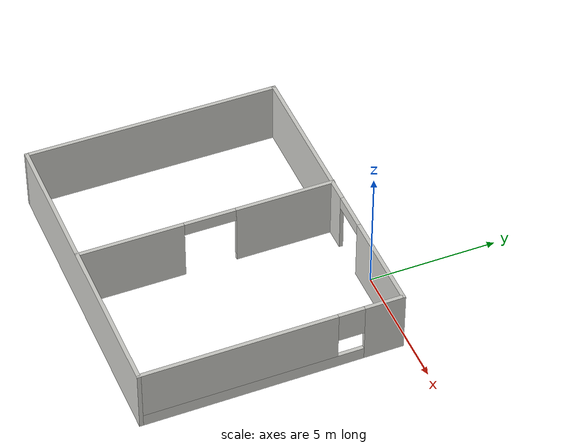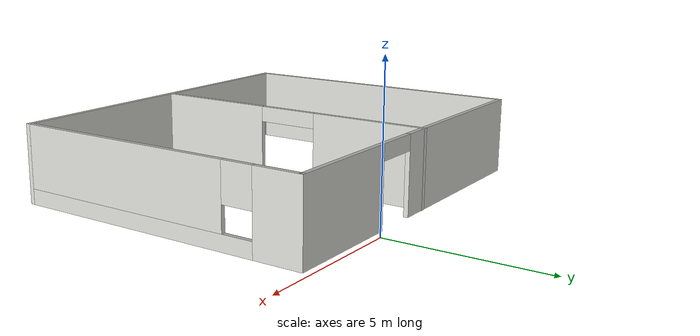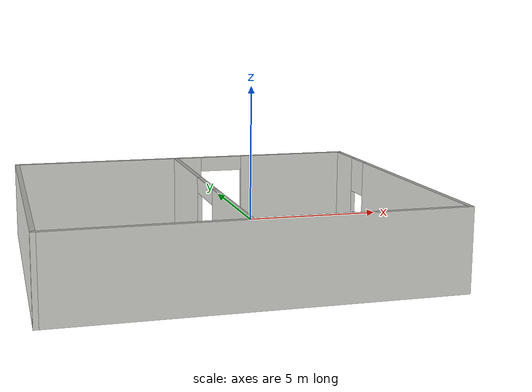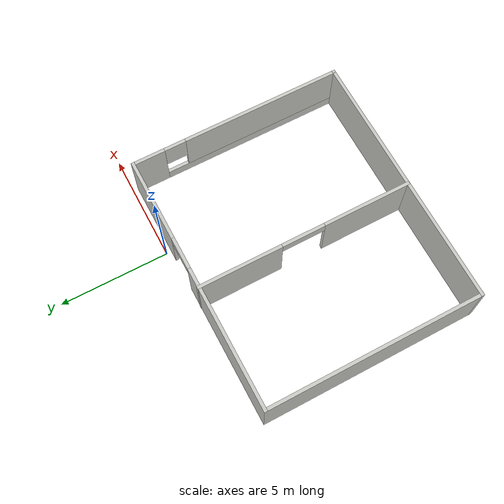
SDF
<?xml version='1.0'?>
<sdf version='1.6'>
  <model name='Untitled'>
    <pose frame=''>-2.56852 -5.2172 0 0 -0 0</pose>
    <link name='Wall_2'>
      <pose frame=''>0 4.91712 0 0 -0 0</pose>
      <visual name='Wall_2_Visual_0'>
        <pose frame=''>-2.71113 0 1.25 0 -0 0</pose>
        <geometry>
          <box>
            <size>6.57774 0.15 2.5</size>
          </box>
        </geometry>
        <material>
          <script>
            <uri>file://media/materials/scripts/gazebo.material</uri>
            <name>Gazebo/CeilingTiled</name>
          </script>
          <ambient>0.435294 0.796078 0.67451 1</ambient>
        </material>
        <meta>
          <layer>0</layer>
        </meta>
      </visual>
      <collision name='Wall_2_Collision_0'>
        <geometry>
          <box>
            <size>6.57774 0.15 2.5</size>
          </box>
        </geometry>
        <pose frame=''>-2.71113 0 1.25 0 -0 0</pose>
      </collision>
      <visual name='Wall_2_Visual_1'>
        <pose frame=''>4.03887 0 1.25 0 -0 0</pose>
        <geometry>
          <box>
            <size>3.92226 0.15 2.5</size>
          </box>
        </geometry>
        <material>
          <script>
            <uri>file://media/materials/scripts/gazebo.material</uri>
            <name>Gazebo/CeilingTiled</name>
          </script>
          <ambient>0.435294 0.796078 0.67451 1</ambient>
        </material>
        <meta>
          <layer>0</layer>
        </meta>
      </visual>
      <collision name='Wall_2_Collision_1'>
        <geometry>
          <box>
            <size>3.92226 0.15 2.5</size>
          </box>
        </geometry>
        <pose frame=''>4.03887 0 1.25 0 -0 0</pose>
      </collision>
      <visual name='Wall_2_Visual_2'>
        <pose frame=''>1.32774 0 2.25 0 -0 0</pose>
        <geometry>
          <box>
            <size>1.5 0.15 0.5</size>
          </box>
        </geometry>
        <material>
          <script>
            <uri>file://media/materials/scripts/gazebo.material</uri>
            <name>Gazebo/CeilingTiled</name>
          </script>
          <ambient>0.435294 0.796078 0.67451 1</ambient>
        </material>
        <meta>
          <layer>0</layer>
        </meta>
      </visual>
      <collision name='Wall_2_Collision_2'>
        <geometry>
          <box>
            <size>1.5 0.15 0.5</size>
          </box>
        </geometry>
        <pose frame=''>1.32774 0 2.25 0 -0 0</pose>
      </collision>
    </link>
    <link name='Wall_3'>
      <pose frame=''>5.925 -0.007883 0 0 0 -1.5708</pose>
      <visual name='Wall_3_Visual_0'>
        <pose frame=''>-4.22922 0 1.25 0 -0 0</pose>
        <geometry>
          <box>
            <size>1.54156 0.15 2.5</size>
          </box>
        </geometry>
        <material>
          <script>
            <uri>file://media/materials/scripts/gazebo.material</uri>
            <name>Gazebo/CeilingTiled</name>
          </script>
          <ambient>0.435294 0.796078 0.67451 1</ambient>
        </material>
        <meta>
          <layer>0</layer>
        </meta>
      </visual>
      <collision name='Wall_3_Collision_0'>
        <geometry>
          <box>
            <size>1.54156 0.15 2.5</size>
          </box>
        </geometry>
        <pose frame=''>-4.22922 0 1.25 0 -0 0</pose>
      </collision>
      <visual name='Wall_3_Visual_1'>
        <pose frame=''>0.770779 0 0.25 0 -0 0</pose>
        <geometry>
          <box>
            <size>8.45844 0.15 0.5</size>
          </box>
        </geometry>
        <material>
          <script>
            <uri>file://media/materials/scripts/gazebo.material</uri>
            <name>Gazebo/CeilingTiled</name>
          </script>
          <ambient>0.435294 0.796078 0.67451 1</ambient>
        </material>
        <meta>
          <layer>0</layer>
        </meta>
      </visual>
      <collision name='Wall_3_Collision_1'>
        <geometry>
          <box>
            <size>8.45844 0.15 0.5</size>
          </box>
        </geometry>
        <pose frame=''>0.770779 0 0.25 0 -0 0</pose>
      </collision>
      <visual name='Wall_3_Visual_2'>
        <pose frame=''>1.27078 0 1.5 0 -0 0</pose>
        <geometry>
          <box>
            <size>7.45844 0.15 2</size>
          </box>
        </geometry>
        <material>
          <script>
            <uri>file://media/materials/scripts/gazebo.material</uri>
            <name>Gazebo/CeilingTiled</name>
          </script>
          <ambient>0.435294 0.796078 0.67451 1</ambient>
        </material>
        <meta>
          <layer>0</layer>
        </meta>
      </visual>
      <collision name='Wall_3_Collision_2'>
        <geometry>
          <box>
            <size>7.45844 0.15 2</size>
          </box>
        </geometry>
        <pose frame=''>1.27078 0 1.5 0 -0 0</pose>
      </collision>
      <visual name='Wall_3_Visual_3'>
        <pose frame=''>-2.95844 0 1.9 0 -0 0</pose>
        <geometry>
          <box>
            <size>1 0.15 1.2</size>
          </box>
        </geometry>
        <material>
          <script>
            <uri>file://media/materials/scripts/gazebo.material</uri>
            <name>Gazebo/CeilingTiled</name>
          </script>
          <ambient>0.435294 0.796078 0.67451 1</ambient>
        </material>
        <meta>
          <layer>0</layer>
        </meta>
      </visual>
      <collision name='Wall_3_Collision_3'>
        <geometry>
          <box>
            <size>1 0.15 1.2</size>
          </box>
        </geometry>
        <pose frame=''>-2.95844 0 1.9 0 -0 0</pose>
      </collision>
    </link>
    <link name='Wall_6'>
      <collision name='Wall_6_Collision'>
        <geometry>
          <box>
            <size>12 0.15 2.5</size>
          </box>
        </geometry>
        <pose frame=''>0 0 1.25 0 -0 0</pose>
      </collision>
      <visual name='Wall_6_Visual'>
        <pose frame=''>0 0 1.25 0 -0 0</pose>
        <geometry>
          <box>
            <size>12 0.15 2.5</size>
          </box>
        </geometry>
        <material>
          <script>
            <uri>file://media/materials/scripts/gazebo.material</uri>
            <name>Gazebo/CeilingTiled</name>
          </script>
          <ambient>1 1 1 1</ambient>
        </material>
        <meta>
          <layer>0</layer>
        </meta>
      </visual>
      <pose frame=''>0 -4.93288 0 0 -0 3.14159</pose>
    </link>
    <link name='Wall_7'>
      <collision name='Wall_7_Collision'>
        <geometry>
          <box>
            <size>10 0.15 2.5</size>
          </box>
        </geometry>
        <pose frame=''>0 0 1.25 0 -0 0</pose>
      </collision>
      <visual name='Wall_7_Visual'>
        <pose frame=''>0 0 1.25 0 -0 0</pose>
        <geometry>
          <box>
            <size>10 0.15 2.5</size>
          </box>
        </geometry>
        <material>
          <script>
            <uri>file://media/materials/scripts/gazebo.material</uri>
            <name>Gazebo/CeilingTiled</name>
          </script>
          <ambient>0.435294 0.796078 0.67451 1</ambient>
        </material>
        <meta>
          <layer>0</layer>
        </meta>
      </visual>
      <pose frame=''>-5.925 -0.007883 0 0 -0 1.5708</pose>
    </link>
    <link name='Wall_9'>
      <pose frame=''>-0.330936 0.007883 0 0 0 -1.5708</pose>
      <visual name='Wall_9_Visual_0'>
        <pose frame=''>-3.05539 0 1.25 0 -0 0</pose>
        <geometry>
          <box>
            <size>3.88921 0.15 2.5</size>
          </box>
        </geometry>
        <material>
          <script>
            <uri>file://media/materials/scripts/gazebo.material</uri>
            <name>Gazebo/CeilingTiled</name>
          </script>
          <ambient>0.435294 0.796078 0.67451 1</ambient>
        </material>
        <meta>
          <layer>0</layer>
        </meta>
      </visual>
      <collision name='Wall_9_Collision_0'>
        <geometry>
          <box>
            <size>3.88921 0.15 2.5</size>
          </box>
        </geometry>
        <pose frame=''>-3.05539 0 1.25 0 -0 0</pose>
      </collision>
      <visual name='Wall_9_Visual_1'>
        <pose frame=''>2.94461 0 1.25 0 -0 0</pose>
        <geometry>
          <box>
            <size>4.11079 0.15 2.5</size>
          </box>
        </geometry>
        <material>
          <script>
            <uri>file://media/materials/scripts/gazebo.material</uri>
            <name>Gazebo/CeilingTiled</name>
          </script>
          <ambient>0.435294 0.796078 0.67451 1</ambient>
        </material>
        <meta>
          <layer>0</layer>
        </meta>
      </visual>
      <collision name='Wall_9_Collision_1'>
        <geometry>
          <box>
            <size>4.11079 0.15 2.5</size>
          </box>
        </geometry>
        <pose frame=''>2.94461 0 1.25 0 -0 0</pose>
      </collision>
      <visual name='Wall_9_Visual_2'>
        <pose frame=''>-0.110786 0 2.25 0 -0 0</pose>
        <geometry>
          <box>
            <size>2 0.15 0.5</size>
          </box>
        </geometry>
        <material>
          <script>
            <uri>file://media/materials/scripts/gazebo.material</uri>
            <name>Gazebo/CeilingTiled</name>
          </script>
          <ambient>0.435294 0.796078 0.67451 1</ambient>
        </material>
        <meta>
          <layer>0</layer>
        </meta>
      </visual>
      <collision name='Wall_9_Collision_2'>
        <geometry>
          <box>
            <size>2 0.15 0.5</size>
          </box>
        </geometry>
        <pose frame=''>-0.110786 0 2.25 0 -0 0</pose>
      </collision>
    </link>
    <static>1</static>
  </model>
</sdf>
